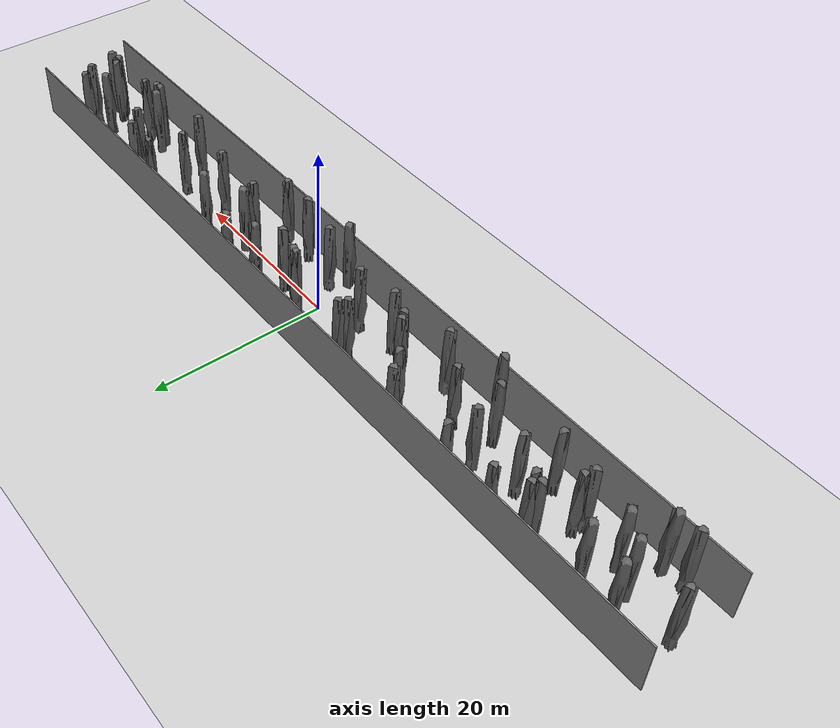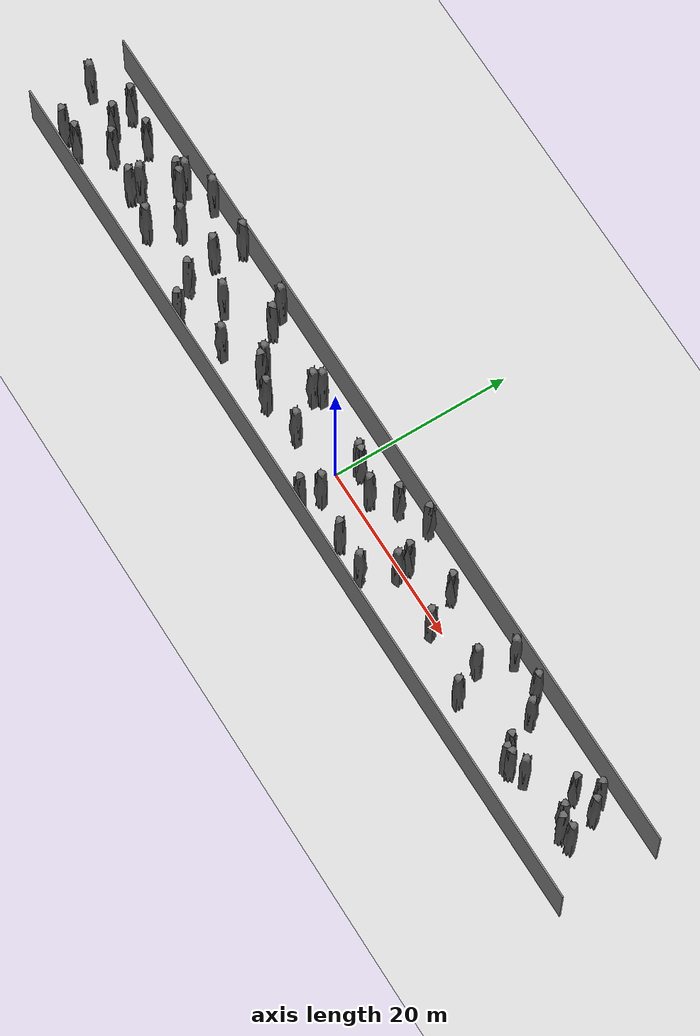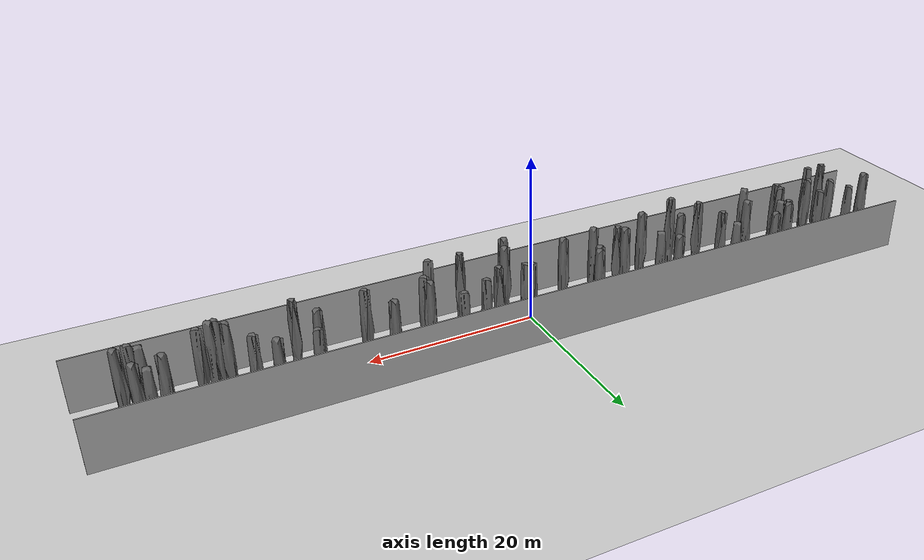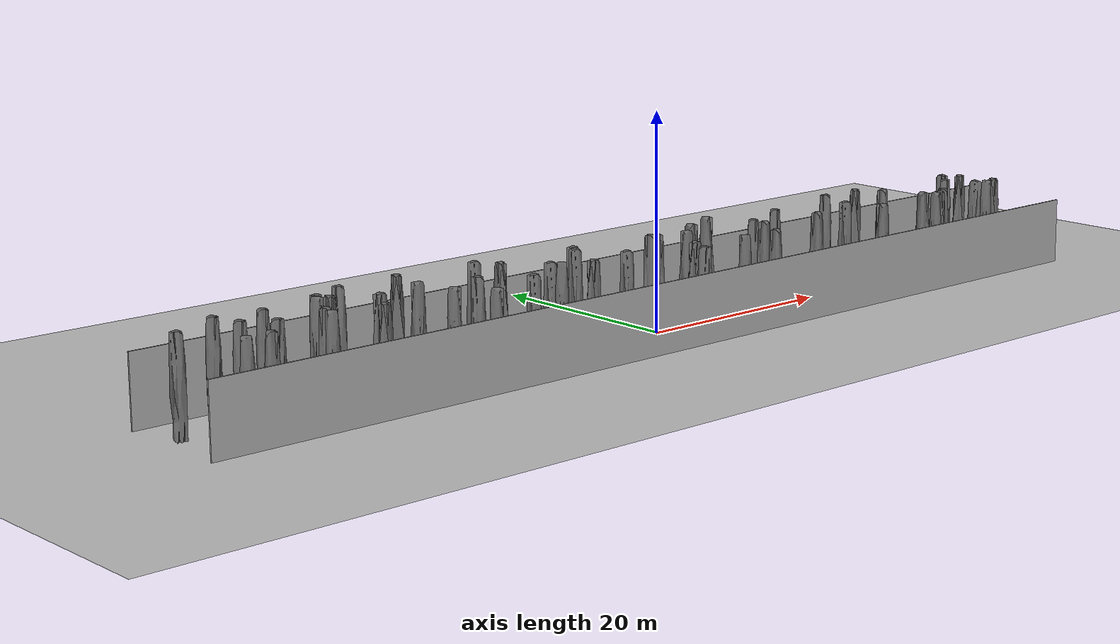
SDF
<sdf version="1.6">
 <world name="default">
  <model name="ground_plane">
   <static>1</static>
   <link name="link">
    <collision name="collision">
     <geometry><plane><normal>0 0 1</normal><size>100 100</size></plane></geometry>
     <surface>
      <contact><collide_bitmask>65535</collide_bitmask></contact>
      <friction><ode><mu>100</mu><mu2>50</mu2></ode></friction>
     </surface>
    </collision>
    <visual name="visual">
     <cast_shadows>0</cast_shadows>
     <geometry><plane><normal>0 0 1</normal><size>100 100</size></plane></geometry>
     <material>
      <script><uri>file://media/materials/scripts/gazebo.material</uri><name>Gazebo/Grey</name></script>
     </material>
    </visual>
   </link>
  </model>
  <light name="sun" type="directional">
   <pose>0 0 10 0 -0 0</pose>
   <diffuse>0.8 0.8 0.8 1</diffuse>
   <specular>0.2 0.2 0.2 1</specular>
   <attenuation>
    <range>1000</range>
    <constant>0.9</constant>
    <linear>0.01</linear>
    <quadratic>0.001</quadratic>
   </attenuation>
   <direction>-0.5 0.1 -0.9</direction>
  </light>
  <scene><shadows>0</shadows><ambient>0.4 0.4 0.4 1</ambient><background>0.7 0.7 0.7 1</background></scene>
  <plugin name="ros_interface_plugin" filename="librotors_gazebo_ros_interface_plugin.so"/>
  <physics name="default_physics" default="0" type="ode">
   <max_step_size>0.005</max_step_size>
   <real_time_factor>1</real_time_factor>
   <real_time_update_rate>600</real_time_update_rate>
   <ode>
    <solver>
     <type>quick</type>
     <iters>1000</iters>
     <sor>1.3</sor>
     <use_dynamic_moi_rescaling>0</use_dynamic_moi_rescaling>
    </solver>
    <constraints>
     <cfm>0</cfm>
     <erp>0.2</erp>
     <contact_max_correcting_vel>100</contact_max_correcting_vel>
     <contact_surface_layer>0.001</contact_surface_layer>
    </constraints>
   </ode>
  </physics>
  <model name="easySimple Stone0">
   <pose>-40.2242 2.18164 0 0 -0 -2.10969</pose>
   <static>1</static>
   <link name="link">
    <collision name="collision">
     <geometry><mesh><uri>model://Simple Stone/meshes/Simple Stone.dae</uri></mesh></geometry>
    </collision>
    <visual name="visual">
     <geometry><mesh><uri>model://Simple Stone/meshes/Simple Stone.dae</uri></mesh></geometry>
    </visual>
   </link>
  </model>
  <model name="easySimple Stone1">
   <pose>41.3828 1.53531 0 0 -0 -2.56047</pose>
   <static>1</static>
   <link name="link">
    <collision name="collision">
     <geometry><mesh><uri>model://Simple Stone/meshes/Simple Stone.dae</uri></mesh></geometry>
    </collision>
    <visual name="visual">
     <geometry><mesh><uri>model://Simple Stone/meshes/Simple Stone.dae</uri></mesh></geometry>
    </visual>
   </link>
  </model>
  <model name="easySimple Stone2">
   <pose>-43.6459 0.217328 0 0 -0 -2.40225</pose>
   <static>1</static>
   <link name="link">
    <collision name="collision">
     <geometry><mesh><uri>model://Simple Stone/meshes/Simple Stone.dae</uri></mesh></geometry>
    </collision>
    <visual name="visual">
     <geometry><mesh><uri>model://Simple Stone/meshes/Simple Stone.dae</uri></mesh></geometry>
    </visual>
   </link>
  </model>
  <model name="easySimple Stone3">
   <pose>-33.8724 2.21745 0 0 -0 2.32138</pose>
   <static>1</static>
   <link name="link">
    <collision name="collision">
     <geometry><mesh><uri>model://Simple Stone/meshes/Simple Stone.dae</uri></mesh></geometry>
    </collision>
    <visual name="visual">
     <geometry><mesh><uri>model://Simple Stone/meshes/Simple Stone.dae</uri></mesh></geometry>
    </visual>
   </link>
  </model>
  <model name="easySimple Stone4">
   <pose>-46.031 -4.2685 0 0 -0 -0.519786</pose>
   <static>1</static>
   <link name="link">
    <collision name="collision">
     <geometry><mesh><uri>model://Simple Stone/meshes/Simple Stone.dae</uri></mesh></geometry>
    </collision>
    <visual name="visual">
     <geometry><mesh><uri>model://Simple Stone/meshes/Simple Stone.dae</uri></mesh></geometry>
    </visual>
   </link>
  </model>
  <model name="easySimple Stone5">
   <pose>-16.0269 2.40788 0 0 -0 2.69836</pose>
   <static>1</static>
   <link name="link">
    <collision name="collision">
     <geometry><mesh><uri>model://Simple Stone/meshes/Simple Stone.dae</uri></mesh></geometry>
    </collision>
    <visual name="visual">
     <geometry><mesh><uri>model://Simple Stone/meshes/Simple Stone.dae</uri></mesh></geometry>
    </visual>
   </link>
  </model>
  <model name="easySimple Stone6">
   <pose>12.7868 0.596681 0 0 -0 -2.46047</pose>
   <static>1</static>
   <link name="link">
    <collision name="collision">
     <geometry><mesh><uri>model://Simple Stone/meshes/Simple Stone.dae</uri></mesh></geometry>
    </collision>
    <visual name="visual">
     <geometry><mesh><uri>model://Simple Stone/meshes/Simple Stone.dae</uri></mesh></geometry>
    </visual>
   </link>
  </model>
  <model name="easySimple Stone7">
   <pose>1.93658 -2.88524 0 0 -0 1.91007</pose>
   <static>1</static>
   <link name="link">
    <collision name="collision">
     <geometry><mesh><uri>model://Simple Stone/meshes/Simple Stone.dae</uri></mesh></geometry>
    </collision>
    <visual name="visual">
     <geometry><mesh><uri>model://Simple Stone/meshes/Simple Stone.dae</uri></mesh></geometry>
    </visual>
   </link>
  </model>
  <model name="easySimple Stone8">
   <pose>7.11616 3.01017 0 0 -0 -1.61843</pose>
   <static>1</static>
   <link name="link">
    <collision name="collision">
     <geometry><mesh><uri>model://Simple Stone/meshes/Simple Stone.dae</uri></mesh></geometry>
    </collision>
    <visual name="visual">
     <geometry><mesh><uri>model://Simple Stone/meshes/Simple Stone.dae</uri></mesh></geometry>
    </visual>
   </link>
  </model>
  <model name="easySimple Stone9">
   <pose>-20.8335 -0.464796 0 0 -0 1.20216</pose>
   <static>1</static>
   <link name="link">
    <collision name="collision">
     <geometry><mesh><uri>model://Simple Stone/meshes/Simple Stone.dae</uri></mesh></geometry>
    </collision>
    <visual name="visual">
     <geometry><mesh><uri>model://Simple Stone/meshes/Simple Stone.dae</uri></mesh></geometry>
    </visual>
   </link>
  </model>
  <model name="easySimple Stone10">
   <pose>-43.7151 -4.17068 0 0 -0 -2.00135</pose>
   <static>1</static>
   <link name="link">
    <collision name="collision">
     <geometry><mesh><uri>model://Simple Stone/meshes/Simple Stone.dae</uri></mesh></geometry>
    </collision>
    <visual name="visual">
     <geometry><mesh><uri>model://Simple Stone/meshes/Simple Stone.dae</uri></mesh></geometry>
    </visual>
   </link>
  </model>
  <model name="easySimple Stone11">
   <pose>-31.2672 4.63162 0 0 -0 1.24397</pose>
   <static>1</static>
   <link name="link">
    <collision name="collision">
     <geometry><mesh><uri>model://Simple Stone/meshes/Simple Stone.dae</uri></mesh></geometry>
    </collision>
    <visual name="visual">
     <geometry><mesh><uri>model://Simple Stone/meshes/Simple Stone.dae</uri></mesh></geometry>
    </visual>
   </link>
  </model>
  <model name="easySimple Stone12">
   <pose>34.5036 -1.41494 0 0 -0 -1.87558</pose>
   <static>1</static>
   <link name="link">
    <collision name="collision">
     <geometry><mesh><uri>model://Simple Stone/meshes/Simple Stone.dae</uri></mesh></geometry>
    </collision>
    <visual name="visual">
     <geometry><mesh><uri>model://Simple Stone/meshes/Simple Stone.dae</uri></mesh></geometry>
    </visual>
   </link>
  </model>
  <model name="easySimple Stone13">
   <pose>-9.58445 -2.25982 0 0 -0 1.97007</pose>
   <static>1</static>
   <link name="link">
    <collision name="collision">
     <geometry><mesh><uri>model://Simple Stone/meshes/Simple Stone.dae</uri></mesh></geometry>
    </collision>
    <visual name="visual">
     <geometry><mesh><uri>model://Simple Stone/meshes/Simple Stone.dae</uri></mesh></geometry>
    </visual>
   </link>
  </model>
  <model name="easySimple Stone14">
   <pose>44.1822 1.97634 0 0 -0 2.12931</pose>
   <static>1</static>
   <link name="link">
    <collision name="collision">
     <geometry><mesh><uri>model://Simple Stone/meshes/Simple Stone.dae</uri></mesh></geometry>
    </collision>
    <visual name="visual">
     <geometry><mesh><uri>model://Simple Stone/meshes/Simple Stone.dae</uri></mesh></geometry>
    </visual>
   </link>
  </model>
  <model name="easySimple Stone15">
   <pose>25.3566 0.514349 0 0 -0 1.54521</pose>
   <static>1</static>
   <link name="link">
    <collision name="collision">
     <geometry><mesh><uri>model://Simple Stone/meshes/Simple Stone.dae</uri></mesh></geometry>
    </collision>
    <visual name="visual">
     <geometry><mesh><uri>model://Simple Stone/meshes/Simple Stone.dae</uri></mesh></geometry>
    </visual>
   </link>
  </model>
  <model name="easySimple Stone16">
   <pose>-25.65 1.37761 0 0 -0 -0.206525</pose>
   <static>1</static>
   <link name="link">
    <collision name="collision">
     <geometry><mesh><uri>model://Simple Stone/meshes/Simple Stone.dae</uri></mesh></geometry>
    </collision>
    <visual name="visual">
     <geometry><mesh><uri>model://Simple Stone/meshes/Simple Stone.dae</uri></mesh></geometry>
    </visual>
   </link>
  </model>
  <model name="easySimple Stone17">
   <pose>-17.3906 4.23076 0 0 -0 1.59832</pose>
   <static>1</static>
   <link name="link">
    <collision name="collision">
     <geometry><mesh><uri>model://Simple Stone/meshes/Simple Stone.dae</uri></mesh></geometry>
    </collision>
    <visual name="visual">
     <geometry><mesh><uri>model://Simple Stone/meshes/Simple Stone.dae</uri></mesh></geometry>
    </visual>
   </link>
  </model>
  <model name="easySimple Stone18">
   <pose>-25.3953 4.59399 0 0 -0 2.45325</pose>
   <static>1</static>
   <link name="link">
    <collision name="collision">
     <geometry><mesh><uri>model://Simple Stone/meshes/Simple Stone.dae</uri></mesh></geometry>
    </collision>
    <visual name="visual">
     <geometry><mesh><uri>model://Simple Stone/meshes/Simple Stone.dae</uri></mesh></geometry>
    </visual>
   </link>
  </model>
  <model name="easySimple Stone19">
   <pose>7.15526 -3.88041 0 0 -0 -0.48965</pose>
   <static>1</static>
   <link name="link">
    <collision name="collision">
     <geometry><mesh><uri>model://Simple Stone/meshes/Simple Stone.dae</uri></mesh></geometry>
    </collision>
    <visual name="visual">
     <geometry><mesh><uri>model://Simple Stone/meshes/Simple Stone.dae</uri></mesh></geometry>
    </visual>
   </link>
  </model>
  <model name="easySimple Stone20">
   <pose>10.4481 4.41574 0 0 -0 -1.37678</pose>
   <static>1</static>
   <link name="link">
    <collision name="collision">
     <geometry><mesh><uri>model://Simple Stone/meshes/Simple Stone.dae</uri></mesh></geometry>
    </collision>
    <visual name="visual">
     <geometry><mesh><uri>model://Simple Stone/meshes/Simple Stone.dae</uri></mesh></geometry>
    </visual>
   </link>
  </model>
  <model name="easySimple Stone21">
   <pose>-24.672 -2.19306 0 0 -0 -1.03177</pose>
   <static>1</static>
   <link name="link">
    <collision name="collision">
     <geometry><mesh><uri>model://Simple Stone/meshes/Simple Stone.dae</uri></mesh></geometry>
    </collision>
    <visual name="visual">
     <geometry><mesh><uri>model://Simple Stone/meshes/Simple Stone.dae</uri></mesh></geometry>
    </visual>
   </link>
  </model>
  <model name="easySimple Stone22">
   <pose>43.0813 3.37169 0 0 -0 2.93645</pose>
   <static>1</static>
   <link name="link">
    <collision name="collision">
     <geometry><mesh><uri>model://Simple Stone/meshes/Simple Stone.dae</uri></mesh></geometry>
    </collision>
    <visual name="visual">
     <geometry><mesh><uri>model://Simple Stone/meshes/Simple Stone.dae</uri></mesh></geometry>
    </visual>
   </link>
  </model>
  <model name="easySimple Stone23">
   <pose>27.095 -2.68127 0 0 -0 -0.062378</pose>
   <static>1</static>
   <link name="link">
    <collision name="collision">
     <geometry><mesh><uri>model://Simple Stone/meshes/Simple Stone.dae</uri></mesh></geometry>
    </collision>
    <visual name="visual">
     <geometry><mesh><uri>model://Simple Stone/meshes/Simple Stone.dae</uri></mesh></geometry>
    </visual>
   </link>
  </model>
  <model name="easySimple Stone24">
   <pose>-30.3196 0.228129 0 0 -0 1.91676</pose>
   <static>1</static>
   <link name="link">
    <collision name="collision">
     <geometry><mesh><uri>model://Simple Stone/meshes/Simple Stone.dae</uri></mesh></geometry>
    </collision>
    <visual name="visual">
     <geometry><mesh><uri>model://Simple Stone/meshes/Simple Stone.dae</uri></mesh></geometry>
    </visual>
   </link>
  </model>
  <model name="easySimple Stone25">
   <pose>-22.3469 -4.79644 0 0 -0 -1.0947</pose>
   <static>1</static>
   <link name="link">
    <collision name="collision">
     <geometry><mesh><uri>model://Simple Stone/meshes/Simple Stone.dae</uri></mesh></geometry>
    </collision>
    <visual name="visual">
     <geometry><mesh><uri>model://Simple Stone/meshes/Simple Stone.dae</uri></mesh></geometry>
    </visual>
   </link>
  </model>
  <model name="easySimple Stone26">
   <pose>-34.3958 3.26175 0 0 -0 1.17765</pose>
   <static>1</static>
   <link name="link">
    <collision name="collision">
     <geometry><mesh><uri>model://Simple Stone/meshes/Simple Stone.dae</uri></mesh></geometry>
    </collision>
    <visual name="visual">
     <geometry><mesh><uri>model://Simple Stone/meshes/Simple Stone.dae</uri></mesh></geometry>
    </visual>
   </link>
  </model>
  <model name="easySimple Stone27">
   <pose>37.3327 -1.54905 0 0 -0 0.749487</pose>
   <static>1</static>
   <link name="link">
    <collision name="collision">
     <geometry><mesh><uri>model://Simple Stone/meshes/Simple Stone.dae</uri></mesh></geometry>
    </collision>
    <visual name="visual">
     <geometry><mesh><uri>model://Simple Stone/meshes/Simple Stone.dae</uri></mesh></geometry>
    </visual>
   </link>
  </model>
  <model name="easySimple Stone28">
   <pose>1.07097 2.06264 0 0 -0 0.640592</pose>
   <static>1</static>
   <link name="link">
    <collision name="collision">
     <geometry><mesh><uri>model://Simple Stone/meshes/Simple Stone.dae</uri></mesh></geometry>
    </collision>
    <visual name="visual">
     <geometry><mesh><uri>model://Simple Stone/meshes/Simple Stone.dae</uri></mesh></geometry>
    </visual>
   </link>
  </model>
  <model name="easySimple Stone29">
   <pose>12.9006 -0.708556 0 0 -0 0.379001</pose>
   <static>1</static>
   <link name="link">
    <collision name="collision">
     <geometry><mesh><uri>model://Simple Stone/meshes/Simple Stone.dae</uri></mesh></geometry>
    </collision>
    <visual name="visual">
     <geometry><mesh><uri>model://Simple Stone/meshes/Simple Stone.dae</uri></mesh></geometry>
    </visual>
   </link>
  </model>
  <model name="easySimple Stone30">
   <pose>-34.8445 2.59564 0 0 -0 -0.991</pose>
   <static>1</static>
   <link name="link">
    <collision name="collision">
     <geometry><mesh><uri>model://Simple Stone/meshes/Simple Stone.dae</uri></mesh></geometry>
    </collision>
    <visual name="visual">
     <geometry><mesh><uri>model://Simple Stone/meshes/Simple Stone.dae</uri></mesh></geometry>
    </visual>
   </link>
  </model>
  <model name="easySimple Stone31">
   <pose>-36.6403 -1.97104 0 0 -0 -0.36657</pose>
   <static>1</static>
   <link name="link">
    <collision name="collision">
     <geometry><mesh><uri>model://Simple Stone/meshes/Simple Stone.dae</uri></mesh></geometry>
    </collision>
    <visual name="visual">
     <geometry><mesh><uri>model://Simple Stone/meshes/Simple Stone.dae</uri></mesh></geometry>
    </visual>
   </link>
  </model>
  <model name="easySimple Stone32">
   <pose>-44.4426 2.80616 0 0 -0 -2.33364</pose>
   <static>1</static>
   <link name="link">
    <collision name="collision">
     <geometry><mesh><uri>model://Simple Stone/meshes/Simple Stone.dae</uri></mesh></geometry>
    </collision>
    <visual name="visual">
     <geometry><mesh><uri>model://Simple Stone/meshes/Simple Stone.dae</uri></mesh></geometry>
    </visual>
   </link>
  </model>
  <model name="easySimple Stone33">
   <pose>-36.4177 -0.832057 0 0 -0 0.747501</pose>
   <static>1</static>
   <link name="link">
    <collision name="collision">
     <geometry><mesh><uri>model://Simple Stone/meshes/Simple Stone.dae</uri></mesh></geometry>
    </collision>
    <visual name="visual">
     <geometry><mesh><uri>model://Simple Stone/meshes/Simple Stone.dae</uri></mesh></geometry>
    </visual>
   </link>
  </model>
  <model name="easySimple Stone34">
   <pose>44.0164 -1.61591 0 0 -0 -1.0055</pose>
   <static>1</static>
   <link name="link">
    <collision name="collision">
     <geometry><mesh><uri>model://Simple Stone/meshes/Simple Stone.dae</uri></mesh></geometry>
    </collision>
    <visual name="visual">
     <geometry><mesh><uri>model://Simple Stone/meshes/Simple Stone.dae</uri></mesh></geometry>
    </visual>
   </link>
  </model>
  <model name="easySimple Stone35">
   <pose>-41.2447 -1.30877 0 0 -0 -2.428</pose>
   <static>1</static>
   <link name="link">
    <collision name="collision">
     <geometry><mesh><uri>model://Simple Stone/meshes/Simple Stone.dae</uri></mesh></geometry>
    </collision>
    <visual name="visual">
     <geometry><mesh><uri>model://Simple Stone/meshes/Simple Stone.dae</uri></mesh></geometry>
    </visual>
   </link>
  </model>
  <model name="easySimple Stone36">
   <pose>-32.1136 -2.79331 -0 0 -0 2.2578</pose>
   <static>1</static>
   <link name="link">
    <collision name="collision">
     <geometry><mesh><uri>model://Simple Stone/meshes/Simple Stone.dae</uri></mesh></geometry>
    </collision>
    <visual name="visual">
     <geometry><mesh><uri>model://Simple Stone/meshes/Simple Stone.dae</uri></mesh></geometry>
    </visual>
   </link>
  </model>
  <model name="easySimple Stone37">
   <pose>1.11647 -4.89013 0 0 -0 -2.75895</pose>
   <static>1</static>
   <link name="link">
    <collision name="collision">
     <geometry><mesh><uri>model://Simple Stone/meshes/Simple Stone.dae</uri></mesh></geometry>
    </collision>
    <visual name="visual">
     <geometry><mesh><uri>model://Simple Stone/meshes/Simple Stone.dae</uri></mesh></geometry>
    </visual>
   </link>
  </model>
  <model name="easySimple Stone38">
   <pose>-49.0169 0.63583 0 0 -0 1.39187</pose>
   <static>1</static>
   <link name="link">
    <collision name="collision">
     <geometry><mesh><uri>model://Simple Stone/meshes/Simple Stone.dae</uri></mesh></geometry>
    </collision>
    <visual name="visual">
     <geometry><mesh><uri>model://Simple Stone/meshes/Simple Stone.dae</uri></mesh></geometry>
    </visual>
   </link>
  </model>
  <model name="easySimple Stone39">
   <pose>-12.237 -1.17439 0 0 -0 -0.725021</pose>
   <static>1</static>
   <link name="link">
    <collision name="collision">
     <geometry><mesh><uri>model://Simple Stone/meshes/Simple Stone.dae</uri></mesh></geometry>
    </collision>
    <visual name="visual">
     <geometry><mesh><uri>model://Simple Stone/meshes/Simple Stone.dae</uri></mesh></geometry>
    </visual>
   </link>
  </model>
  <model name="easySimple Stone40">
   <pose>45.3046 -1.45244 0 0 -0 2.02161</pose>
   <static>1</static>
   <link name="link">
    <collision name="collision">
     <geometry><mesh><uri>model://Simple Stone/meshes/Simple Stone.dae</uri></mesh></geometry>
    </collision>
    <visual name="visual">
     <geometry><mesh><uri>model://Simple Stone/meshes/Simple Stone.dae</uri></mesh></geometry>
    </visual>
   </link>
  </model>
  <model name="easySimple Stone41">
   <pose>4.6915 1.0853 0 0 -0 -0.238428</pose>
   <static>1</static>
   <link name="link">
    <collision name="collision">
     <geometry><mesh><uri>model://Simple Stone/meshes/Simple Stone.dae</uri></mesh></geometry>
    </collision>
    <visual name="visual">
     <geometry><mesh><uri>model://Simple Stone/meshes/Simple Stone.dae</uri></mesh></geometry>
    </visual>
   </link>
  </model>
  <model name="easySimple Stone42">
   <pose>35.3539 -2.39215 0 0 -0 -1.30996</pose>
   <static>1</static>
   <link name="link">
    <collision name="collision">
     <geometry><mesh><uri>model://Simple Stone/meshes/Simple Stone.dae</uri></mesh></geometry>
    </collision>
    <visual name="visual">
     <geometry><mesh><uri>model://Simple Stone/meshes/Simple Stone.dae</uri></mesh></geometry>
    </visual>
   </link>
  </model>
  <model name="easySimple Stone43">
   <pose>26.5432 4.25368 0 0 -0 0.97471</pose>
   <static>1</static>
   <link name="link">
    <collision name="collision">
     <geometry><mesh><uri>model://Simple Stone/meshes/Simple Stone.dae</uri></mesh></geometry>
    </collision>
    <visual name="visual">
     <geometry><mesh><uri>model://Simple Stone/meshes/Simple Stone.dae</uri></mesh></geometry>
    </visual>
   </link>
  </model>
  <model name="easySimple Stone44">
   <pose>32.6327 2.22211 0 0 -0 0.456996</pose>
   <static>1</static>
   <link name="link">
    <collision name="collision">
     <geometry><mesh><uri>model://Simple Stone/meshes/Simple Stone.dae</uri></mesh></geometry>
    </collision>
    <visual name="visual">
     <geometry><mesh><uri>model://Simple Stone/meshes/Simple Stone.dae</uri></mesh></geometry>
    </visual>
   </link>
  </model>
  <model name="easySimple Stone45">
   <pose>1.74713 1.87003 0 0 -0 -1.89829</pose>
   <static>1</static>
   <link name="link">
    <collision name="collision">
     <geometry><mesh><uri>model://Simple Stone/meshes/Simple Stone.dae</uri></mesh></geometry>
    </collision>
    <visual name="visual">
     <geometry><mesh><uri>model://Simple Stone/meshes/Simple Stone.dae</uri></mesh></geometry>
    </visual>
   </link>
  </model>
  <model name="easySimple Stone46">
   <pose>11.0164 -3.98031 0 0 -0 0.524924</pose>
   <static>1</static>
   <link name="link">
    <collision name="collision">
     <geometry><mesh><uri>model://Simple Stone/meshes/Simple Stone.dae</uri></mesh></geometry>
    </collision>
    <visual name="visual">
     <geometry><mesh><uri>model://Simple Stone/meshes/Simple Stone.dae</uri></mesh></geometry>
    </visual>
   </link>
  </model>
  <model name="easySimple Stone47">
   <pose>30.6522 4.05881 0 0 -0 2.18789</pose>
   <static>1</static>
   <link name="link">
    <collision name="collision">
     <geometry><mesh><uri>model://Simple Stone/meshes/Simple Stone.dae</uri></mesh></geometry>
    </collision>
    <visual name="visual">
     <geometry><mesh><uri>model://Simple Stone/meshes/Simple Stone.dae</uri></mesh></geometry>
    </visual>
   </link>
  </model>
  <model name="easySimple Stone48">
   <pose>35.9191 -2.36338 0 0 -0 2.45318</pose>
   <static>1</static>
   <link name="link">
    <collision name="collision">
     <geometry><mesh><uri>model://Simple Stone/meshes/Simple Stone.dae</uri></mesh></geometry>
    </collision>
    <visual name="visual">
     <geometry><mesh><uri>model://Simple Stone/meshes/Simple Stone.dae</uri></mesh></geometry>
    </visual>
   </link>
  </model>
  <model name="easySimple Stone49">
   <pose>43.0819 -0.933946 0 0 -0 3.08042</pose>
   <static>1</static>
   <link name="link">
    <collision name="collision">
     <geometry><mesh><uri>model://Simple Stone/meshes/Simple Stone.dae</uri></mesh></geometry>
    </collision>
    <visual name="visual">
     <geometry><mesh><uri>model://Simple Stone/meshes/Simple Stone.dae</uri></mesh></geometry>
    </visual>
   </link>
  </model>
  <gravity>0 0 -9.8</gravity>
  <magnetic_field>6e-06 2.3e-05 -4.2e-05</magnetic_field>
  <atmosphere type="adiabatic"/>
  <audio><device>default</device></audio>
  <spherical_coordinates>
   <surface_model>EARTH_WGS84</surface_model>
   <latitude_deg>0</latitude_deg>
   <longitude_deg>0</longitude_deg>
   <elevation>0</elevation>
   <heading_deg>0</heading_deg>
  </spherical_coordinates>
  <model name="wall_100m">
   <link name="Wall_0">
    <pose>2e-06 0 0 0 -0 3.14159</pose>
    <inertial>
     <mass>1</mass>
     <inertia><ixx>1</ixx><ixy>0</ixy><ixz>0</ixz><iyy>1</iyy><iyz>0</iyz><izz>1</izz></inertia>
    </inertial>
    <visual name="Wall_0_Visual">
     <pose>0 0 1.25 0 -0 0</pose>
     <geometry><box><size>100.75 0.15 10</size></box></geometry>
     <material>
      <script><uri>file://media/materials/scripts/gazebo.material</uri><name>Gazebo/Grey</name></script>
      <ambient>1 1 1 1</ambient>
      <shader type="vertex"><normal_map>__default__</normal_map></shader>
      <diffuse>0.7 0.7 0.7 1</diffuse>
      <specular>0.01 0.01 0.01 1</specular>
      <emissive>0 0 0 1</emissive>
     </material>
     <meta><layer>0</layer></meta>
    </visual>
    <collision name="Wall_0_Collision">
     <pose>0 0 1.25 0 -0 0</pose>
     <geometry><box><size>100.75 0.15 10</size></box></geometry>
     <surface>
      <friction>
       <ode><mu>1</mu><mu2>1</mu2><fdir1>0 0 0</fdir1><slip1>0</slip1><slip2>0</slip2></ode>
       <torsional>
        <coefficient>1</coefficient>
        <patch_radius>0</patch_radius>
        <surface_radius>0</surface_radius>
        <use_patch_radius>1</use_patch_radius>
        <ode><slip>0</slip></ode>
       </torsional>
      </friction>
      <bounce><restitution_coefficient>0</restitution_coefficient><threshold>1e+06</threshold></bounce>
      <contact>
       <collide_without_contact>0</collide_without_contact>
       <collide_without_contact_bitmask>1</collide_without_contact_bitmask>
       <collide_bitmask>1</collide_bitmask>
       <ode>
        <soft_cfm>0</soft_cfm>
        <soft_erp>0.2</soft_erp>
        <kp>1e+13</kp>
        <kd>1</kd>
        <max_vel>0.01</max_vel>
        <min_depth>0</min_depth>
       </ode>
       <bullet>
        <split_impulse>1</split_impulse>
        <split_impulse_penetration_threshold>-0.01</split_impulse_penetration_threshold>
        <soft_cfm>0</soft_cfm>
        <soft_erp>0.2</soft_erp>
        <kp>1e+13</kp>
        <kd>1</kd>
       </bullet>
      </contact>
     </surface>
    </collision>
   </link>
   <static>1</static>
   <pose>-0.03768 -5.68325 0 0 -0 0</pose>
  </model>
  <model name="wall_100m_clone">
   <link name="Wall_0">
    <pose>2e-06 0 0 0 -0 3.14159</pose>
    <inertial>
     <mass>1</mass>
     <inertia><ixx>1</ixx><ixy>0</ixy><ixz>0</ixz><iyy>1</iyy><iyz>0</iyz><izz>1</izz></inertia>
    </inertial>
    <visual name="Wall_0_Visual">
     <pose>0 0 1.25 0 -0 0</pose>
     <geometry><box><size>100.75 0.15 10</size></box></geometry>
     <material>
      <script><uri>file://media/materials/scripts/gazebo.material</uri><name>Gazebo/Grey</name></script>
      <ambient>1 1 1 1</ambient>
      <shader type="vertex"><normal_map>__default__</normal_map></shader>
      <diffuse>0.7 0.7 0.7 1</diffuse>
      <specular>0.01 0.01 0.01 1</specular>
      <emissive>0 0 0 1</emissive>
     </material>
     <meta><layer>0</layer></meta>
    </visual>
    <collision name="Wall_0_Collision">
     <pose>0 0 1.25 0 -0 0</pose>
     <geometry><box><size>100.75 0.15 10</size></box></geometry>
     <surface>
      <friction>
       <ode><mu>1</mu><mu2>1</mu2><fdir1>0 0 0</fdir1><slip1>0</slip1><slip2>0</slip2></ode>
       <torsional>
        <coefficient>1</coefficient>
        <patch_radius>0</patch_radius>
        <surface_radius>0</surface_radius>
        <use_patch_radius>1</use_patch_radius>
        <ode><slip>0</slip></ode>
       </torsional>
      </friction>
      <bounce><restitution_coefficient>0</restitution_coefficient><threshold>1e+06</threshold></bounce>
      <contact>
       <collide_without_contact>0</collide_without_contact>
       <collide_without_contact_bitmask>1</collide_without_contact_bitmask>
       <collide_bitmask>1</collide_bitmask>
       <ode>
        <soft_cfm>0</soft_cfm>
        <soft_erp>0.2</soft_erp>
        <kp>1e+13</kp>
        <kd>1</kd>
        <max_vel>0.01</max_vel>
        <min_depth>0</min_depth>
       </ode>
       <bullet>
        <split_impulse>1</split_impulse>
        <split_impulse_penetration_threshold>-0.01</split_impulse_penetration_threshold>
        <soft_cfm>0</soft_cfm>
        <soft_erp>0.2</soft_erp>
        <kp>1e+13</kp>
        <kd>1</kd>
       </bullet>
      </contact>
     </surface>
    </collision>
   </link>
   <static>1</static>
   <pose>-0.005816 5.39714 0 0 -0 0</pose>
  </model>
  <model name="easySimple Stone29_clone">
   <pose>19.6113 -1.09636 0 0 -0 0.379001</pose>
   <static>1</static>
   <link name="link">
    <collision name="collision">
     <geometry><mesh><uri>model://Simple Stone/meshes/Simple Stone.dae</uri></mesh></geometry>
    </collision>
    <visual name="visual">
     <geometry><mesh><uri>model://Simple Stone/meshes/Simple Stone.dae</uri></mesh></geometry>
    </visual>
   </link>
  </model>
  <model name="easySimple Stone6_clone">
   <pose>17.6671 2.51403 0 0 0 -2.46047</pose>
   <static>1</static>
   <link name="link">
    <collision name="collision">
     <geometry><mesh><uri>model://Simple Stone/meshes/Simple Stone.dae</uri></mesh></geometry>
    </collision>
    <visual name="visual">
     <geometry><mesh><uri>model://Simple Stone/meshes/Simple Stone.dae</uri></mesh></geometry>
    </visual>
   </link>
  </model>
  <model name="easySimple Stone15_clone">
   <pose>-7.8045 2.13907 0 0 -0 1.54521</pose>
   <static>1</static>
   <link name="link">
    <collision name="collision">
     <geometry><mesh><uri>model://Simple Stone/meshes/Simple Stone.dae</uri></mesh></geometry>
    </collision>
    <visual name="visual">
     <geometry><mesh><uri>model://Simple Stone/meshes/Simple Stone.dae</uri></mesh></geometry>
    </visual>
   </link>
  </model>
  <model name="easySimple Stone15_clone_clone">
   <pose>-5.04939 -1.53031 0 0 -0 1.54521</pose>
   <static>1</static>
   <link name="link">
    <collision name="collision">
     <geometry><mesh><uri>model://Simple Stone/meshes/Simple Stone.dae</uri></mesh></geometry>
    </collision>
    <visual name="visual">
     <geometry><mesh><uri>model://Simple Stone/meshes/Simple Stone.dae</uri></mesh></geometry>
    </visual>
   </link>
  </model>
  <model name="easySimple Stone15_clone_clone_0">
   <pose>-12.8584 -0.441635 0 0 -0 1.54521</pose>
   <static>1</static>
   <link name="link">
    <collision name="collision">
     <geometry><mesh><uri>model://Simple Stone/meshes/Simple Stone.dae</uri></mesh></geometry>
    </collision>
    <visual name="visual">
     <geometry><mesh><uri>model://Simple Stone/meshes/Simple Stone.dae</uri></mesh></geometry>
    </visual>
   </link>
  </model>
  <model name="easySimple Stone15_clone_clone_1">
   <pose>-7.30707 2.92761 0 0 -0 1.54521</pose>
   <static>1</static>
   <link name="link">
    <collision name="collision">
     <geometry><mesh><uri>model://Simple Stone/meshes/Simple Stone.dae</uri></mesh></geometry>
    </collision>
    <visual name="visual">
     <geometry><mesh><uri>model://Simple Stone/meshes/Simple Stone.dae</uri></mesh></geometry>
    </visual>
   </link>
  </model>
  <model name="easySimple Stone15_clone_clone_2">
   <pose>-16.8977 -3.03022 0 0 -0 1.54521</pose>
   <static>1</static>
   <link name="link">
    <collision name="collision">
     <geometry><mesh><uri>model://Simple Stone/meshes/Simple Stone.dae</uri></mesh></geometry>
    </collision>
    <visual name="visual">
     <geometry><mesh><uri>model://Simple Stone/meshes/Simple Stone.dae</uri></mesh></geometry>
    </visual>
   </link>
  </model>
 </world>
</sdf>
